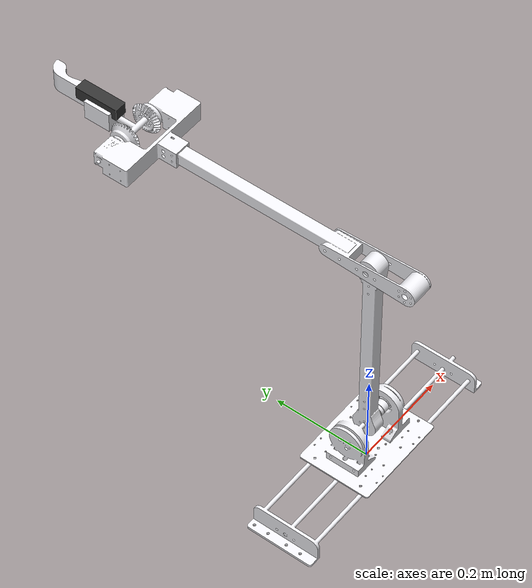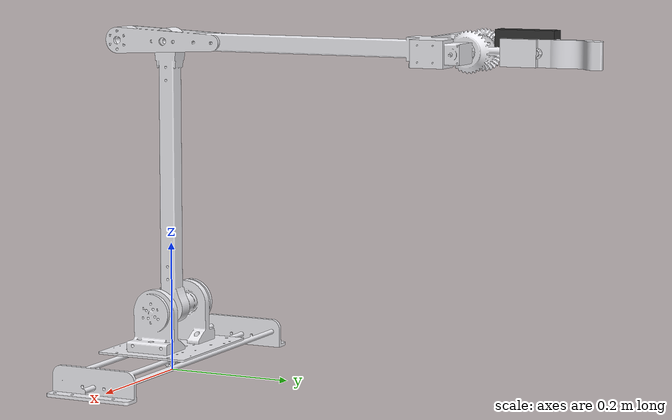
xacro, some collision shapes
<?xml version="1.0"?>
<robot name="chaska_arm" xmlns:xacro="http://www.ros.org/wiki/xacro">

  <!-- true para simulación (Gazebo), false para visualización (RViz) -->
  <xacro:arg name="is_simulation" default="false"/>

  <!-- Links, joints e inerciales -->
  <xacro:include filename="$(find chaska_arm_description)/urdf/chaska_arm_base.xacro"/>

  <!-- Plugin Gazebo Ignition + materiales -->
  <xacro:include filename="$(find chaska_arm_description)/urdf/chaska_arm_gazebo.xacro"/>

  <!-- Interfaz ros2_control (sim=IgnitionSystem, real=mock) -->
  <xacro:include filename="$(find chaska_arm_description)/urdf/chaska_arm_ros2_control.xacro"/>

</robot>

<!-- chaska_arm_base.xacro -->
<robot name="chaska_arm" xmlns:xacro="http://www.ros.org/wiki/xacro">

  <!-- ========== LINKS ========== -->

  <link name="arm_base_link">
    <visual>
      <origin rpy="0 1.57079632679 0" xyz="0 0 0"/>
      <geometry>
        <mesh filename="package://chaska_arm_description/meshes/base.stl" scale="0.001 0.001 0.001"/>
      </geometry>
      <material name="pearl_white">
        <color rgba="0.94 0.94 0.96 1.0"/>
      </material>
    </visual>
    <collision>
      <origin rpy="0 0 0" xyz="0 0 0.015"/>
      <geometry>
        <cylinder radius="0.075" length="0.030"/>
      </geometry>
    </collision>
    <inertial>
      <origin xyz="0 0 0" rpy="0 0 0"/>
      <mass value="1.5"/>
      <!-- Cilindro r=0.075 h=0.030: Ixx=Iyy=m(3r²+h²)/12, Izz=mr²/2 -->
      <inertia ixx="0.002222" ixy="0" ixz="0"
                               iyy="0.002222" iyz="0"
                                              izz="0.004219"/>
    </inertial>
  </link>

  <link name="link_1">
    <visual>
      <origin rpy="0 1.57079632679 0" xyz="0 0 0"/>
      <geometry>
        <mesh filename="package://chaska_arm_description/meshes/link_1.stl" scale="0.001 0.001 0.001"/>
      </geometry>
      <material name="pearl_white">
        <color rgba="0.94 0.94 0.96 1.0"/>
      </material>
    </visual>
    <collision>
      <origin rpy="0 0 0" xyz="0 0 0.040"/>
      <geometry>
        <box size="0.125 0.125 0.083"/>
      </geometry>
    </collision>
    <inertial>
      <origin xyz="0 0 0" rpy="0 0 0"/>
      <mass value="1.0"/>
      <!-- Cubo s=0.080: I=ms²/6 -->
      <inertia ixx="0.001067" ixy="0" ixz="0"
                               iyy="0.001067" iyz="0"
                                              izz="0.001067"/>
    </inertial>
  </link>

  <link name="link_2">
    <visual>
      <origin rpy="0 1.57079632679 0" xyz="0 0 0"/>
      <geometry>
        <mesh filename="package://chaska_arm_description/meshes/link_2.stl" scale="0.001 0.001 0.001"/>
      </geometry>
      <material name="pearl_white">
        <color rgba="0.94 0.94 0.96 1.0"/>
      </material>
    </visual>
    <collision>
      <origin rpy="0 0 0" xyz="0 0 0.207"/>
      <geometry>
        <box size="0.040 0.040 0.414"/>
      </geometry>
    </collision>
    <inertial>
      <origin xyz="0 0 0.200" rpy="0 0 0"/>
      <mass value="0.5"/>
      <!-- Caja 40×40×400 mm (eje Z): CoM a mitad de longitud -->
      <inertia ixx="0.006733" ixy="0" ixz="0"
                               iyy="0.006733" iyz="0"
                                              izz="0.000133"/>
    </inertial>
  </link>

  <link name="link_3">
    <visual>
      <origin rpy="0 1.57079632679 0" xyz="0 0 0"/>
      <geometry>
        <mesh filename="package://chaska_arm_description/meshes/link_3.stl" scale="0.001 0.001 0.001"/>
      </geometry>
      <material name="pearl_white">
        <color rgba="0.94 0.94 0.96 1.0"/>
      </material>
    </visual>
    <collision>
      <origin rpy="0 0 0" xyz="0 0.254 0"/>
      <geometry>
        <box size="0.040 0.507 0.040"/>
      </geometry>
    </collision>
    <inertial>
      <origin xyz="0 0.2536 0" rpy="0 0 0"/>
      <mass value="0.5"/>
      <!-- Caja 40×507×40 mm (eje Y): CoM a mitad de longitud -->
      <inertia ixx="0.010777" ixy="0" ixz="0"
                               iyy="0.000133" iyz="0"
                                              izz="0.010777"/>
    </inertial>
  </link>

  <link name="link_4">
    <visual>
      <origin rpy="0 1.57079632679 0" xyz="0 0 0"/>
      <geometry>
        <mesh filename="package://chaska_arm_description/meshes/link_4.stl" scale="0.001 0.001 0.001"/>
      </geometry>
      <material name="pearl_white">
        <color rgba="0.94 0.94 0.96 1.0"/>
      </material>
    </visual>
    <collision>
      <origin rpy="0 0 0" xyz="0 0.021 0"/>
      <geometry>
        <box size="0.040 0.043 0.040"/>
      </geometry>
    </collision>
    <inertial>
      <origin xyz="0 0 0" rpy="0 0 0"/>
      <mass value="0.5"/>
      <!-- Caja 40×40×50 mm -->
      <inertia ixx="0.000171" ixy="0" ixz="0"
                               iyy="0.000171" iyz="0"
                                              izz="0.000133"/>
    </inertial>
  </link>

  <link name="link_5">
    <visual>
      <origin rpy="0 1.57079632679 0" xyz="0 0 0"/>
      <geometry>
        <mesh filename="package://chaska_arm_description/meshes/link_5.stl" scale="0.001 0.001 0.001"/>
      </geometry>
      <material name="pearl_white">
        <color rgba="0.94 0.94 0.96 1.0"/>
      </material>
    </visual>
    <collision>
      <origin rpy="0 0 0" xyz="0 0.028 0"/>
      <geometry>
        <box size="0.040 0.055 0.040"/>
      </geometry>
    </collision>
    <inertial>
      <origin xyz="0 0 0" rpy="0 0 0"/>
      <mass value="0.5"/>
      <!-- Caja 40×40×80 mm -->
      <inertia ixx="0.000333" ixy="0" ixz="0"
                               iyy="0.000333" iyz="0"
                                              izz="0.000133"/>
    </inertial>
  </link>

  <link name="link_6">
    <visual>
      <origin rpy="0 1.57079632679 0" xyz="0 0 0"/>
      <geometry>
        <mesh filename="package://chaska_arm_description/meshes/link_6.stl" scale="0.001 0.001 0.001"/>
      </geometry>
      <material name="pearl_white">
        <color rgba="0.94 0.94 0.96 1.0"/>
      </material>
    </visual>
    <collision>
      <origin rpy="0 0 0" xyz="0 0 0"/>
      <geometry>
        <box size="0.030 0.060 0.030"/>
      </geometry>
    </collision>
    <inertial>
      <origin xyz="0 0 0" rpy="0 0 0"/>
      <mass value="0.5"/>
      <!-- Caja 30×30×60 mm -->
      <inertia ixx="0.000187" ixy="0" ixz="0"
                               iyy="0.000187" iyz="0"
                                              izz="0.000075"/>
    </inertial>
  </link>

  <!-- ── RealSense D435 ───────────────────────────────────────────────────── -->

  <link name="depth_camera">
    <visual>
      <origin rpy="0 0 0" xyz="0 0 0"/>
      <geometry>
        <box size="0.090 0.025 0.025"/>
      </geometry>
      <material name="camera_gray">
        <color rgba="0.2 0.2 0.2 1.0"/>
      </material>
    </visual>
    <collision>
      <origin rpy="0 0 0" xyz="0 0 0"/>
      <geometry>
        <box size="0.090 0.025 0.025"/>
      </geometry>
    </collision>
    <inertial>
      <origin xyz="0 0 0" rpy="0 0 0"/>
      <mass value="0.072"/>
      <!-- Caja 90×25×25 mm -->
      <inertia ixx="2.6e-5" ixy="0" ixz="0"
                            iyy="5.0e-5" iyz="0"
                                         izz="5.0e-5"/>
    </inertial>
  </link>

  <!-- Marco óptico: convención ROS (Z adelante, X derecha, Y abajo) -->
  <link name="depth_camera_optical_frame"/>

  <link name="end_effector">
    <visual>
      <origin rpy="0 0 0" xyz="0 0 0"/>
      <geometry>
        <sphere radius="0.005"/>
      </geometry>
      <material name="pearl_white">
        <color rgba="0.94 0.94 0.96 1.0"/>
      </material>
    </visual>
    <collision>
      <origin rpy="0 0 0" xyz="0 0 0"/>
      <geometry>
        <!-- Fix: el box size="0 0 0" original crashea Gazebo -->
        <sphere radius="0.005"/>
      </geometry>
    </collision>
    <inertial>
      <origin xyz="0 0 0" rpy="0 0 0"/>
      <mass value="0.05"/>
      <!-- Esfera r=0.005: I=2mr²/5 -->
      <inertia ixx="5e-7" ixy="0" ixz="0"
                          iyy="5e-7" iyz="0"
                                     izz="5e-7"/>
    </inertial>
  </link>

  <!-- ========== JOINTS ========== -->

  <joint name="joint_1" type="prismatic">
    <parent link="arm_base_link"/>
    <child link="link_1"/>
    <origin rpy="0 0 0" xyz="0 0 0.016015"/>
    <axis xyz="1 0 0"/>
    <limit lower="-0.125" upper="0.125" effort="30.0" velocity="10.0"/>
    <dynamics damping="0.1" friction="0.1"/>
  </joint>

  <joint name="joint_2" type="revolute">
    <parent link="link_1"/>
    <child link="link_2"/>
    <origin xyz="0 0 0.083" rpy="0 0 0"/>
    <axis xyz="1 0 0"/>
    <limit lower="-1.5708" upper="1.5708" effort="30.0" velocity="10.0"/>
    <dynamics damping="0.1" friction="0.1"/>
  </joint>

  <joint name="joint_3" type="revolute">
    <parent link="link_2"/>
    <child link="link_3"/>
    <origin xyz="0 0 0.414" rpy="0 0 0"/>
    <axis xyz="1 0 0"/>
    <limit lower="-1.5708" upper="1.5708" effort="30.0" velocity="10.0"/>
    <dynamics damping="0.1" friction="0.1"/>
  </joint>

  <joint name="joint_4" type="revolute">
    <parent link="link_3"/>
    <child link="link_4"/>
    <origin xyz="0 0.507238 0" rpy="0 0 0"/>
    <axis xyz="1 0 0"/>
    <limit lower="-1.5708" upper="1.5708" effort="30.0" velocity="10.0"/>
    <dynamics damping="0.1" friction="0.1"/>
  </joint>

  <joint name="joint_5" type="revolute">
    <parent link="link_4"/>
    <child link="link_5"/>
    <origin xyz="0 0.0428 0" rpy="0 0 0"/>
    <axis xyz="0 1 0"/>
    <limit lower="-1.5708" upper="1.5708" effort="30.0" velocity="10.0"/>
    <dynamics damping="0.1" friction="0.1"/>
  </joint>

  <joint name="joint_6" type="prismatic">
    <parent link="link_5"/>
    <child link="link_6"/>
    <origin xyz="0 0.055 0" rpy="0 0 0"/>
    <axis xyz="1 0 0"/>
    <limit lower="-0.065" upper="0.02" effort="30.0" velocity="10.0"/>
    <dynamics damping="0.1" friction="0.1"/>
  </joint>

  <joint name="joint_7" type="fixed">
    <parent link="link_5"/>
    <child link="end_effector"/>
    <origin rpy="0 0 0" xyz="0 0 0"/>
  </joint>

  <joint name="depth_camera_joint" type="fixed">
    <parent link="link_5"/>
    <child link="depth_camera"/>
    <origin xyz="0 0.035 0.02" rpy="0 0 1.5708"/>
  </joint>

  <joint name="depth_camera_optical_joint" type="fixed">
    <parent link="depth_camera"/>
    <child link="depth_camera_optical_frame"/>
    <!-- Convención óptica ROS: rotar -90° en X y -90° en Z -->
    <origin xyz="0 0 0" rpy="0 0 0"/>
  </joint>

</robot>
